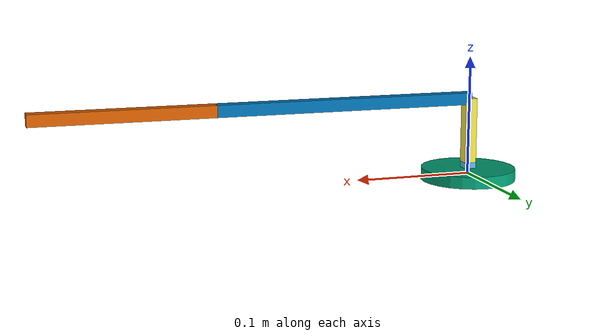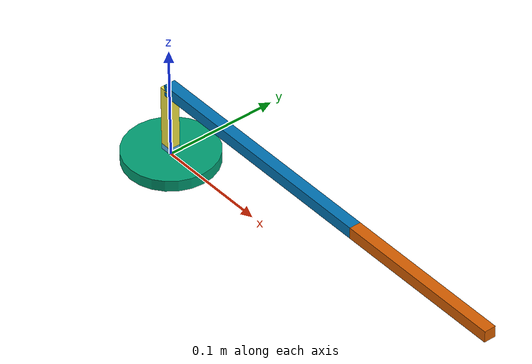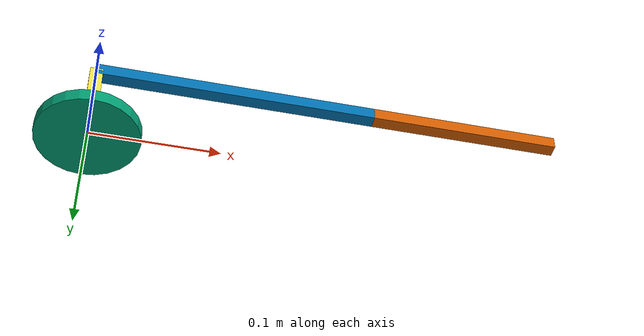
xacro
<?xml version="1.0"?>
<robot name="CrustCrawler" xmlns:xacro="http://www.ros.org/wiki/xacro">
  <xacro:property name="M_pi" value="3.1415" />
  <xacro:property name="LinkWidth" value="0.01" />
  <xacro:property name="offset" value="0.0" />

  <xacro:property name="L0" value="0.01" />
  <xacro:property name="L1" value="0.055" />
  <xacro:property name="L2" value="0.22" />
  <xacro:property name="L3" value="0.15" />
  <xacro:property name="Lp" value="0.0" />

  <xacro:property name="Lc" value="0.05875" />
  <xacro:property name="Lc2" value="0.17433" />
  <xacro:property name="Lc3" value="0.12078" />

  <xacro:property name="m1" value="0.22501148645" />
  <xacro:property name="m2" value="0.21285774246" />
  <xacro:property name="m3" value="0.28725035108" />
  <xacro:property name="mp" value="0.0" />

  <link name="world"/>

  <joint name="world_base" type="fixed">
    <parent link="world"/>
    <child link="base"/>
  </joint>

  <link name="base">
    <collision>
      <origin xyz="0 0 ${L0/2}" rpy="0 0 0"/>
      <geometry>
	<box size="${LinkWidth} ${LinkWidth} ${L0}"/>
      </geometry>
    </collision>

    <visual>
      <origin xyz="0 0 ${L0/2}" rpy="0 0 0"/>
      <geometry>
	<box size="${LinkWidth} ${LinkWidth} ${L0}"/>
  <cylinder length="0.1" radius="0.1"/>
      </geometry>
    </visual>

    <inertial>
      <origin xyz="0 0 ${L0/2}" rpy="0 0 0"/>
      <mass value="${m1}"/>
      <inertia
	  ixx="0.0" ixy="0.0" ixz="0.0"
	  iyy="0.0" iyz="0.0"
	  izz="0.0"/>
    </inertial>
  </link>

  <joint name="joint_1" type="revolute">
    <axis xyz="0 0 1"/>
    <limit effort="1000.0" lower="${-M_pi}" upper="${M_pi}" velocity="0.5"/>
    <parent link="base"/>
    <child link="link1"/>
    <origin xyz="0 0 ${L0}" rpy= "0 0 0"/>
  </joint>

  <!-- Turntable -->

  <joint name="turntable" type="fixed">
    <parent link="base"/>
    <child link="turntable"/>
  </joint>

  <link name="turntable">
    <visual>
      <origin xyz="0 0 0" rpy="0 0 0"/>
      <geometry>
  <cylinder length="0.01" radius="0.04"/>
      </geometry>
    </visual>
  </link>

  <!-- link 1 -->

  <link name="link1">
    <collision>
      <origin xyz="0 0 ${L1/2}" rpy="0 0 0"/>
      <geometry>
	<box size="${LinkWidth} ${LinkWidth} ${L1}"/>
      </geometry>
    </collision>

    <visual>
      <origin xyz="0 0 ${L1/2}" rpy="0 0 0"/>
      <geometry>
	<box size="${LinkWidth} ${LinkWidth} ${L1}"/>
      </geometry>
    </visual>

    <inertial>
      <origin xyz="0 0 ${Lc}" rpy="0 0 0"/>
      <mass value="${m1}"/>
      <inertia
	  ixx="1.0" ixy="0.0" ixz="0.0"
	  iyy="1.0" iyz="0.0"
	  izz="1.0"/>
    </inertial>
  </link>

  <joint name="joint_2" type="revolute">
    <origin xyz="0 0 ${L1}" rpy="${M_pi / 2} 0 0"/>
    <axis xyz="0 0 1"/>
    <limit effort="1000.0" lower="${-M_pi/4}" upper="${M_pi*5/4}" velocity="0.5"/>
    <parent link="link1"/>
    <child link="link2"/>
  </joint>

  <!-- link 2 -->
  <link name="link2">
    <collision>
      <origin xyz="${L2/2} 0 0" rpy="0 0 0"/>
      <geometry>
	<box size="${L2} ${LinkWidth} ${LinkWidth}"/>
      </geometry>
    </collision>

    <visual>
      <origin xyz="${L2/2} 0 ${offset}" rpy="0 0 0"/>
      <geometry>
	<box size="${L2} ${LinkWidth} ${LinkWidth}"/>
      </geometry>
    </visual>

    <inertial>
      <origin xyz="${Lc2} 0 0" rpy="0 0 0"/>
      <mass value="${m2}"/>
      <inertia
	  ixx="1.0" ixy="0.0" ixz="0.0"
	  iyy="1.0" iyz="0.0"
	  izz="1.0"/>
    </inertial>
  </link>

  <joint name="joint_3" type="revolute">
    <axis xyz="0 0 1"/>
    <limit effort="1000.0" lower="${-M_pi*3/4}" upper="${M_pi*3/4}" velocity="0.5"/>
    <parent link="link2"/>
    <child link="link3"/>
    <origin xyz="${L2} 0 0" rpy="0 0 0"/>
  </joint>

  <!-- link 3 -->

  <link name="link3">
    <collision>
      <origin xyz="${L3/2} 0 0" rpy="0 0 0"/>
      <geometry>
  <box size=" ${L3} ${LinkWidth} ${LinkWidth}"/>
      </geometry>
    </collision>

    <visual>
      <origin xyz="${L3/2} 0 0" rpy="0 0 0"/>
      <geometry>
  <box size="${L3} ${LinkWidth} ${LinkWidth} "/>
      </geometry>
    </visual>

    <inertial>
      <origin xyz="${Lc3} 0 0 " rpy="0 0 0"/>
      <mass value="${m3}"/>
      <inertia
    ixx="1.0" ixy="0.0" ixz="0.0"
    iyy="1.0" iyz="0.0"
    izz="1.0"/>
    </inertial>
  </link>

</robot>
